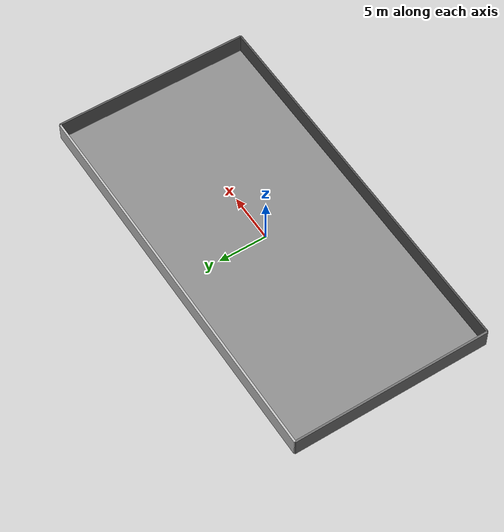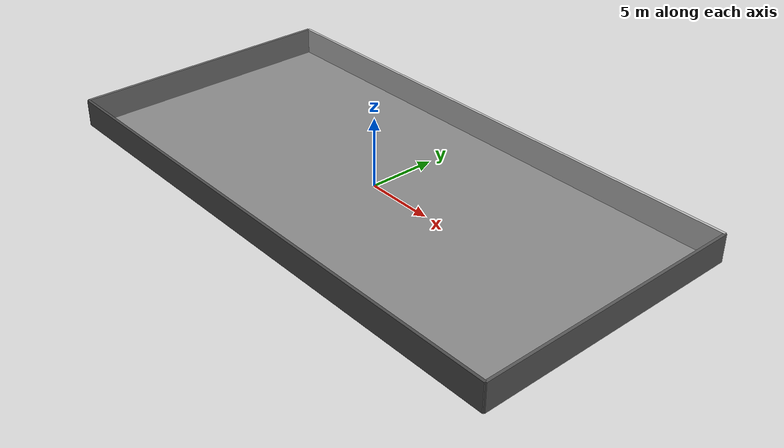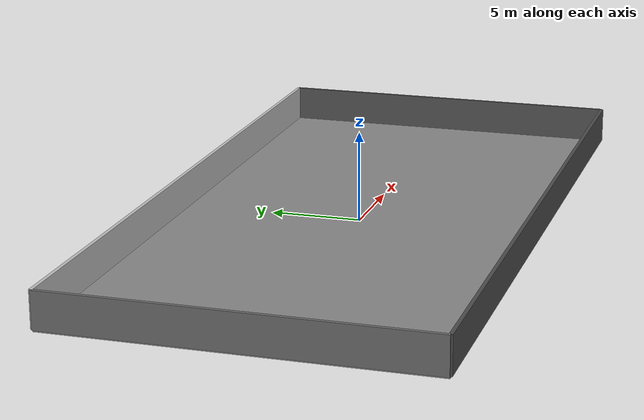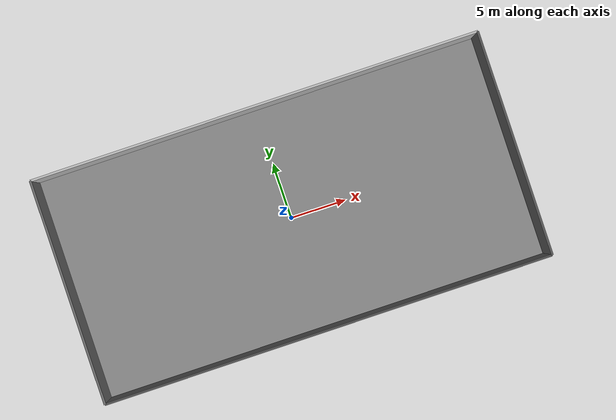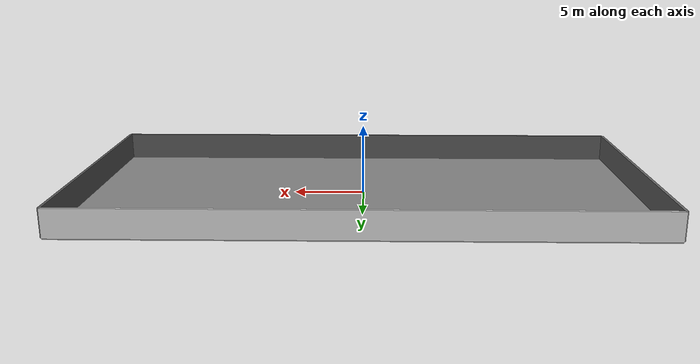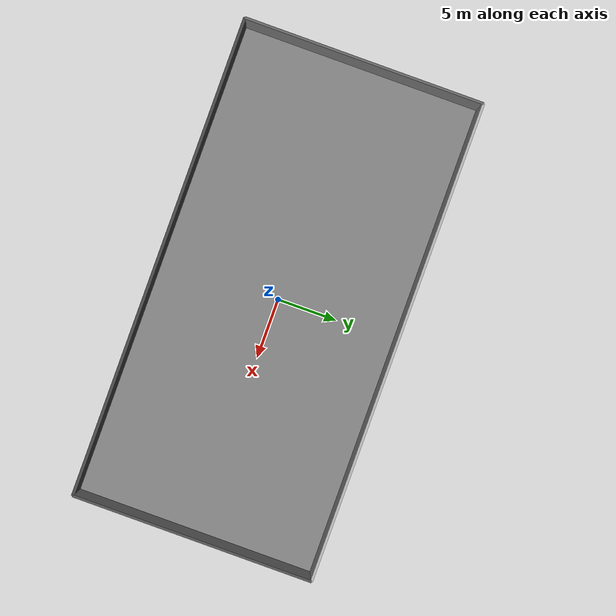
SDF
<sdf version="1.7">
  <world name="default">
    <plugin filename="gz-sim-physics-system" name="gz::sim::systems::Physics" />
    <plugin filename="gz-sim-user-commands-system" name="gz::sim::systems::UserCommands" />
    <plugin filename="gz-sim-scene-broadcaster-system" name="gz::sim::systems::SceneBroadcaster" />
    <plugin filename="gz-sim-sensors-system" name="gz::sim::systems::Sensors">
      <render_engine>ogre2</render_engine>
    </plugin>
    <plugin filename="gz-sim-imu-system" name="gz::sim::systems::Imu" />
    <plugin filename="gz-sim-contact-system" name="gz::sim::systems::Contact" />
    <light name="sun" type="directional">
      <cast_shadows>true</cast_shadows>
      <direction>-0.5 -0.5 -1</direction>
      <diffuse>1 1 1 1</diffuse>
      <specular>0.1 0.1 0.1 1</specular>
      <intensity>1.0</intensity>
    </light>
    <physics type="ode">
      <real_time_update_rate>1000.0</real_time_update_rate>
      <max_step_size>0.001</max_step_size>
      <real_time_factor>1</real_time_factor>
      <ode>
        <solver>
          <type>quick</type>
          <iters>150</iters>
          <precon_iters>0</precon_iters>
          <sor>1.4</sor>
          <use_dynamic_moi_rescaling>1</use_dynamic_moi_rescaling>
        </solver>
        <constraints>
          <cfm>0.00001</cfm>
          <erp>0.2</erp>
          <contact_max_correcting_vel>2000.0</contact_max_correcting_vel>
          <contact_surface_layer>0.01</contact_surface_layer>
        </constraints>
      </ode>
    </physics>
    <model name="ground_plane">
      <static>true</static>
      <link name="link">
        <pose>0.0 0.0 -0.05 0 0 0</pose>
        <visual name="visual">
          <material>
            <ambient>0.5355719895357389 0.5355719895357389 0.5355719895357389 1</ambient>
            <diffuse>0.5355719895357389 0.5355719895357389 0.5355719895357389 1</diffuse>
          </material>
          <geometry>
            <box>
              <size>40.0 20.0 0.1</size>
            </box>
          </geometry>
        </visual>
        <collision name="collision">
          <geometry>
            <box>
              <size>40.0 20.0 0.1</size>
            </box>
          </geometry>
          <surface>
            <friction>
              <ode>
                <mu>100</mu>
                <mu2>50.0</mu2>
                <slip1>0.0</slip1>
                <slip2>0.0</slip2>
              </ode>
            </friction>
            <bounce />
            <contact>
              <ode>
                <kp>10000.0</kp>
                <kd>100.0</kd>
              </ode>
            </contact>
          </surface>
        </collision>
      </link>
    </model>
    <model name="pn_wall_0">
      <static>true</static>
      <link name="link">
        <pose>-20.0 0.0 1.0 0 0 0</pose>
        <visual name="visual">
          <material>
            <ambient>0.4286124139974629 0.4286124139974629 0.4286124139974629 1</ambient>
            <diffuse>0.4286124139974629 0.4286124139974629 0.4286124139974629 1</diffuse>
          </material>
          <geometry>
            <box>
              <size>0.2 20.0 2.0</size>
            </box>
          </geometry>
        </visual>
        <collision name="collision">
          <geometry>
            <box>
              <size>0.2 20.0 2.0</size>
            </box>
          </geometry>
          <surface>
            <friction>
              <ode>
                <mu>100</mu>
                <mu2>50.0</mu2>
                <slip1>0.0</slip1>
                <slip2>0.0</slip2>
              </ode>
            </friction>
            <bounce />
            <contact>
              <ode>
                <kp>10000.0</kp>
                <kd>100.0</kd>
              </ode>
            </contact>
          </surface>
        </collision>
      </link>
    </model>
    <model name="pn_wall_1">
      <static>true</static>
      <link name="link">
        <pose>20.0 0.0 1.0 0 0 0</pose>
        <visual name="visual">
          <material>
            <ambient>0.33843151178628517 0.33843151178628517 0.33843151178628517 1</ambient>
            <diffuse>0.33843151178628517 0.33843151178628517 0.33843151178628517 1</diffuse>
          </material>
          <geometry>
            <box>
              <size>0.2 20.0 2.0</size>
            </box>
          </geometry>
        </visual>
        <collision name="collision">
          <geometry>
            <box>
              <size>0.2 20.0 2.0</size>
            </box>
          </geometry>
          <surface>
            <friction>
              <ode>
                <mu>100</mu>
                <mu2>50.0</mu2>
                <slip1>0.0</slip1>
                <slip2>0.0</slip2>
              </ode>
            </friction>
            <bounce />
            <contact>
              <ode>
                <kp>10000.0</kp>
                <kd>100.0</kd>
              </ode>
            </contact>
          </surface>
        </collision>
      </link>
    </model>
    <model name="pn_wall_2">
      <static>true</static>
      <link name="link">
        <pose>0.0 -10.0 1.0 0 0 0</pose>
        <visual name="visual">
          <material>
            <ambient>0.29962203458848113 0.29962203458848113 0.29962203458848113 1</ambient>
            <diffuse>0.29962203458848113 0.29962203458848113 0.29962203458848113 1</diffuse>
          </material>
          <geometry>
            <box>
              <size>40.0 0.2 2.0</size>
            </box>
          </geometry>
        </visual>
        <collision name="collision">
          <geometry>
            <box>
              <size>40.0 0.2 2.0</size>
            </box>
          </geometry>
          <surface>
            <friction>
              <ode>
                <mu>100</mu>
                <mu2>50.0</mu2>
                <slip1>0.0</slip1>
                <slip2>0.0</slip2>
              </ode>
            </friction>
            <bounce />
            <contact>
              <ode>
                <kp>10000.0</kp>
                <kd>100.0</kd>
              </ode>
            </contact>
          </surface>
        </collision>
      </link>
    </model>
    <model name="pn_wall_3">
      <static>true</static>
      <link name="link">
        <pose>0.0 10.0 1.0 0 0 0</pose>
        <visual name="visual">
          <material>
            <ambient>0.7483000608636279 0.7483000608636279 0.7483000608636279 1</ambient>
            <diffuse>0.7483000608636279 0.7483000608636279 0.7483000608636279 1</diffuse>
          </material>
          <geometry>
            <box>
              <size>40.0 0.2 2.0</size>
            </box>
          </geometry>
        </visual>
        <collision name="collision">
          <geometry>
            <box>
              <size>40.0 0.2 2.0</size>
            </box>
          </geometry>
          <surface>
            <friction>
              <ode>
                <mu>100</mu>
                <mu2>50.0</mu2>
                <slip1>0.0</slip1>
                <slip2>0.0</slip2>
              </ode>
            </friction>
            <bounce />
            <contact>
              <ode>
                <kp>10000.0</kp>
                <kd>100.0</kd>
              </ode>
            </contact>
          </surface>
        </collision>
      </link>
    </model>
  </world>
</sdf>
